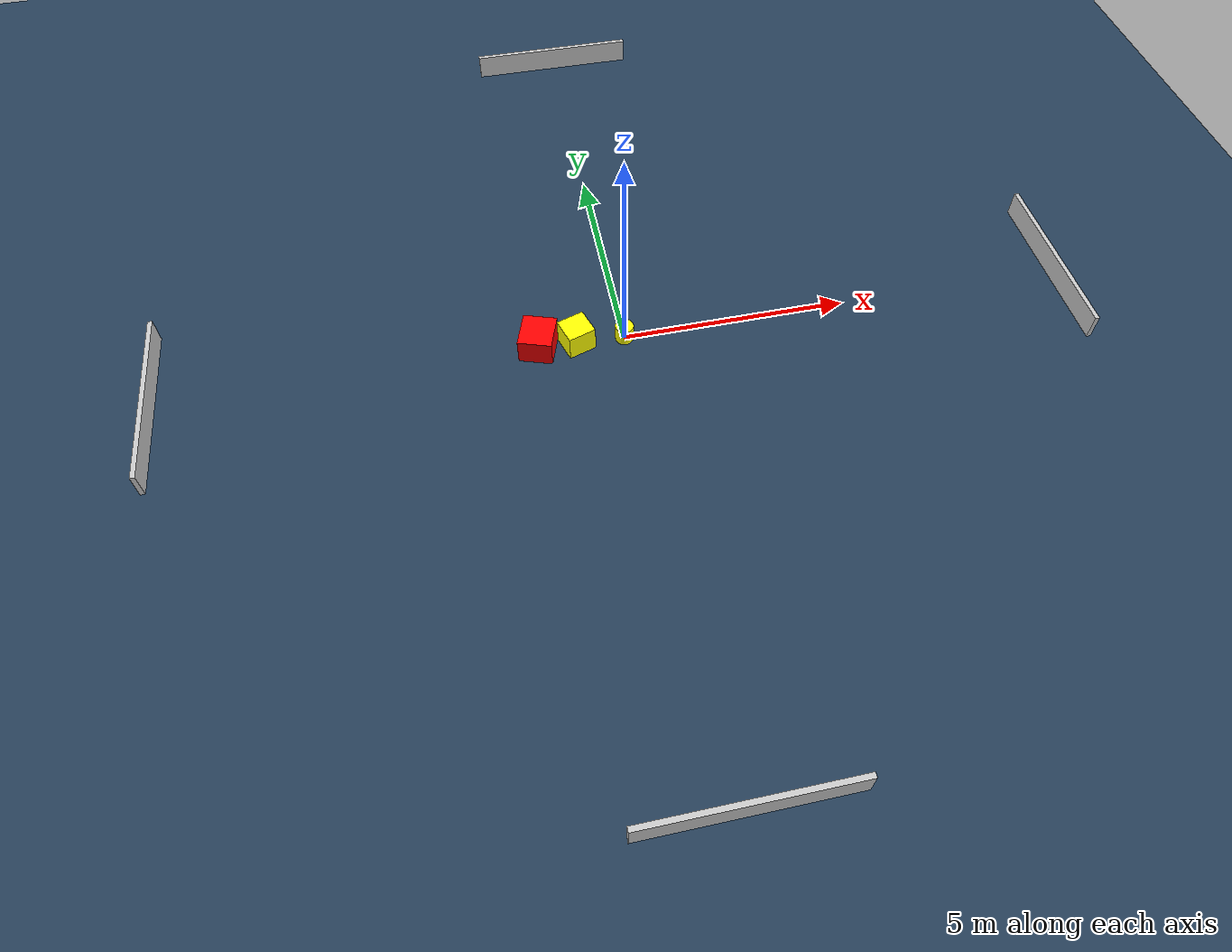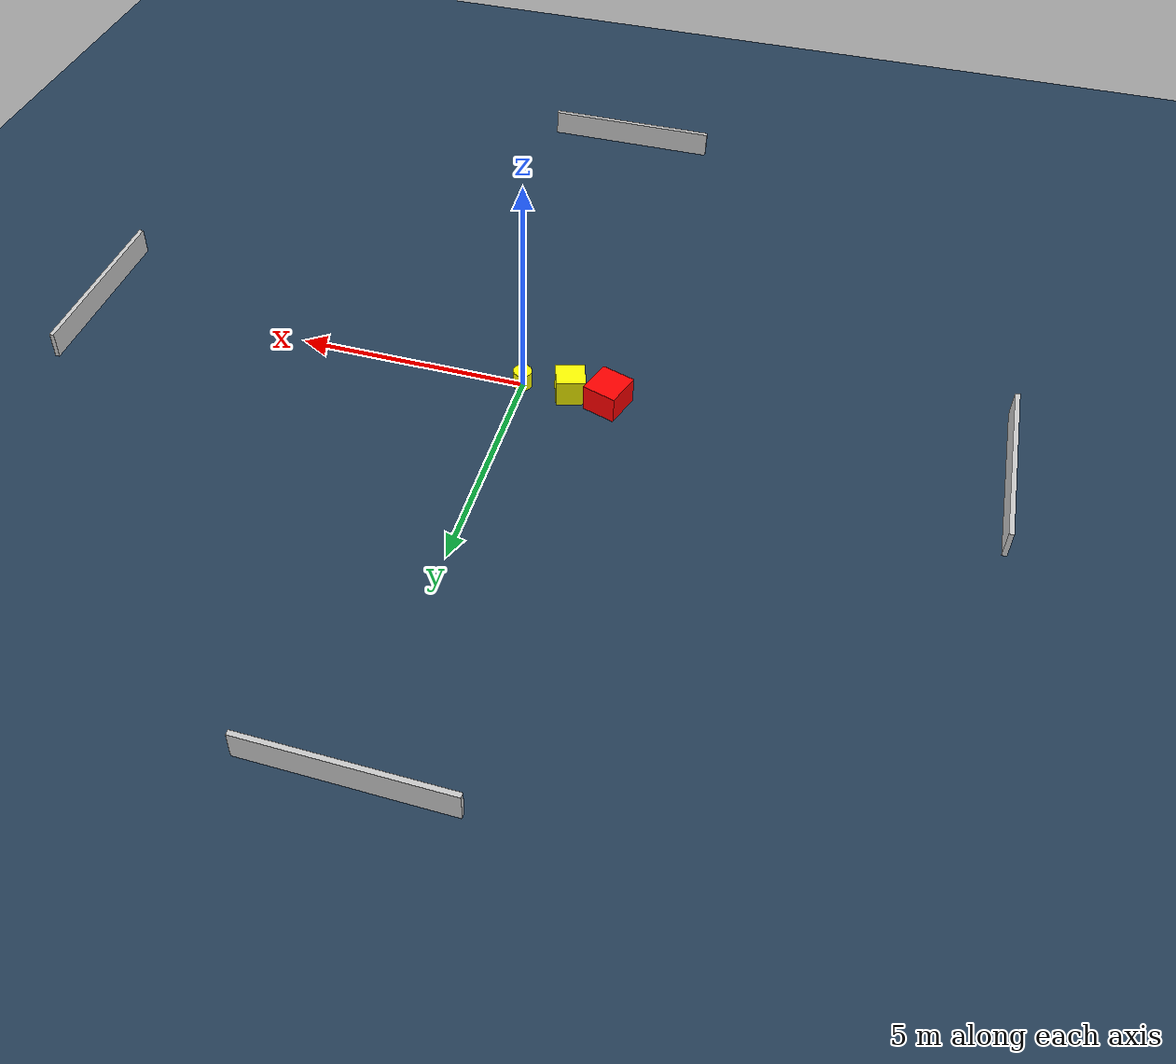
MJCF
<?xml version="1.0" ?>
<mujoco model="generated_environment">
  <option timestep="0.01" integrator="RK4" cone="elliptic"/>
  <default>
    <geom density="1"/>
  </default>
  <asset>
    <texture builtin="gradient" height="3072" name="skybox" rgb1="0.3 0.5 0.7" rgb2="0 0 0" type="skybox" width="512"/>
    <texture builtin="checker" height="300" name="groundplane" rgb1="0.2 0.3 0.4" rgb2="0.1 0.2 0.3" type="2d" width="300"/>
    <material name="groundplane" reflectance="0.2" texrepeat="5 5" texture="groundplane"/>
  </asset>
  <worldbody>
    <light dir="0 0 -1" directional="true" pos="0 0 1.5"/>
    <geom condim="3" friction="0.5 0.005 0.001" material="groundplane" name="floor" pos="0 0 0" size="0 0 0.05" type="plane"/>
    <body name="walls">
      <geom name="wall_1" condim="4" pos="-10.0 0.0 0.3" rgba="0.800000011920929 0.800000011920929 0.800000011920929 1.0" size="0.05 2.0 0.3" type="box"/>
      <geom name="wall_2" condim="4" pos="10.0 0.0 0.3" rgba="0.800000011920929 0.800000011920929 0.800000011920929 1.0" size="0.05 2.0 0.3" type="box"/>
      <geom name="wall_3" condim="4" pos="0.0 -10.0 0.3" rgba="0.800000011920929 0.800000011920929 0.800000011920929 1.0" size="2.0 0.05 0.3" type="box"/>
      <geom name="wall_4" condim="4" pos="0.0 10.0 0.3" rgba="0.800000011920929 0.800000011920929 0.800000011920929 1.0" size="2.0 0.05 0.3" type="box"/>
    </body>
    <body name="robot">
      <joint name="joint_x" type="slide" pos="0 0 0" axis="1 0 0"/>
      <joint name="joint_y" type="slide" pos="0 0 0" axis="0 1 0"/>
      <geom name="robot" type="cylinder" pos="0.0 0.0 0.2" size="0.2 0.2 0.0" mass="5.0" friction="1.0 0.005 0.0001" condim="4" rgba="1.0 1.0 0.0 1.0"/>
    </body>
    <body name="obstacle_1_movable">
      <geom name="obstacle_1_movable" condim="4" pos="-1.0496254610996607 0.035086500558560024 0.3" euler="0 0 288.1346175670424" friction="0.0 0.005 0.001" rgba="1.0 1.0 0.0 1.0" size="0.29298819688948735 0.31072883541823487 0.3" type="box" mass="0.1"/>
      <joint type="free"/>
    </body>
    <body name="obstacle_2_static">
      <geom name="obstacle_2_static" condim="4" pos="-1.8821681143828888 0.08093383874479915 0.3" euler="0 0 251.88846378404912" friction="0.0 0.005 0.001" rgba="1.0 0.0 0.0 1.0" size="0.39138642275109464 0.36804193617212144 0.3" type="box"/>
    </body>
  </worldbody>
  <actuator>
    <motor name="actuator_x" joint="joint_x" gear="1" ctrlrange="-1 1"/>
    <motor name="actuator_y" joint="joint_y" gear="1" ctrlrange="-1 1"/>
  </actuator>
</mujoco>
